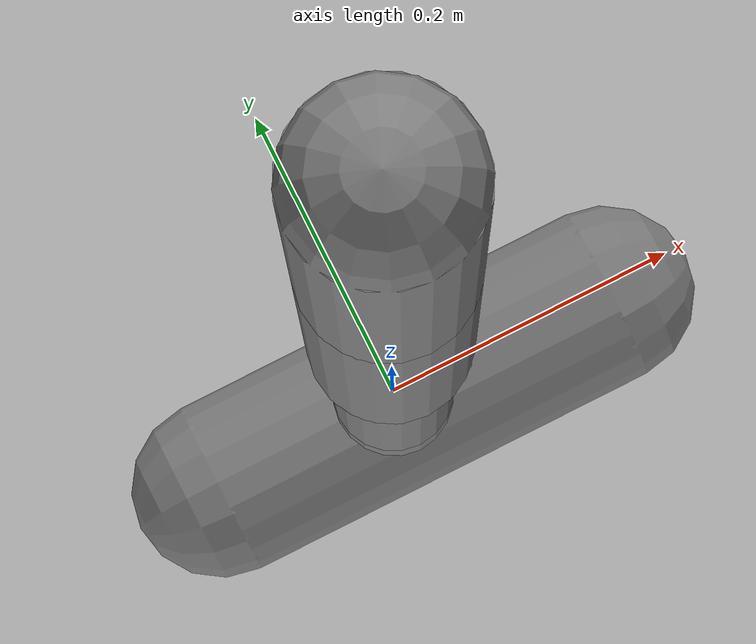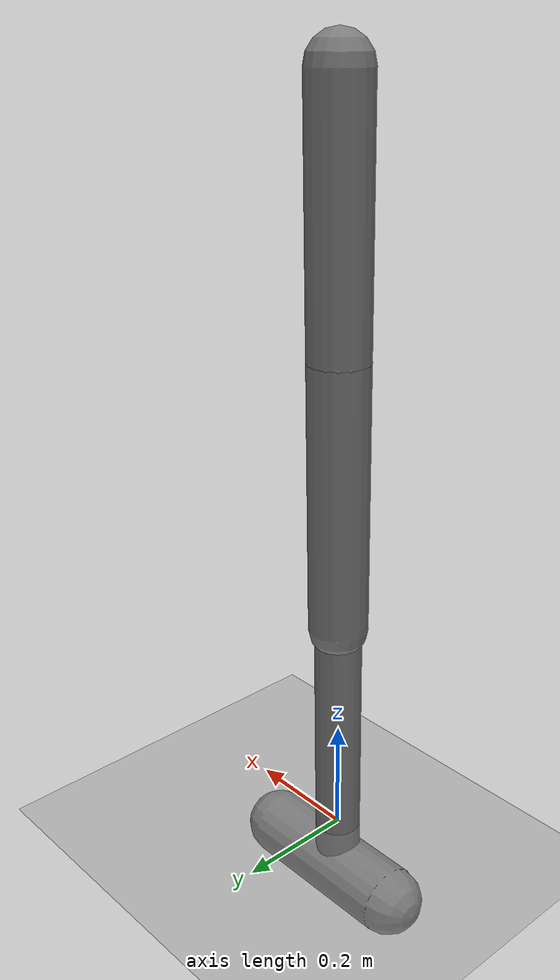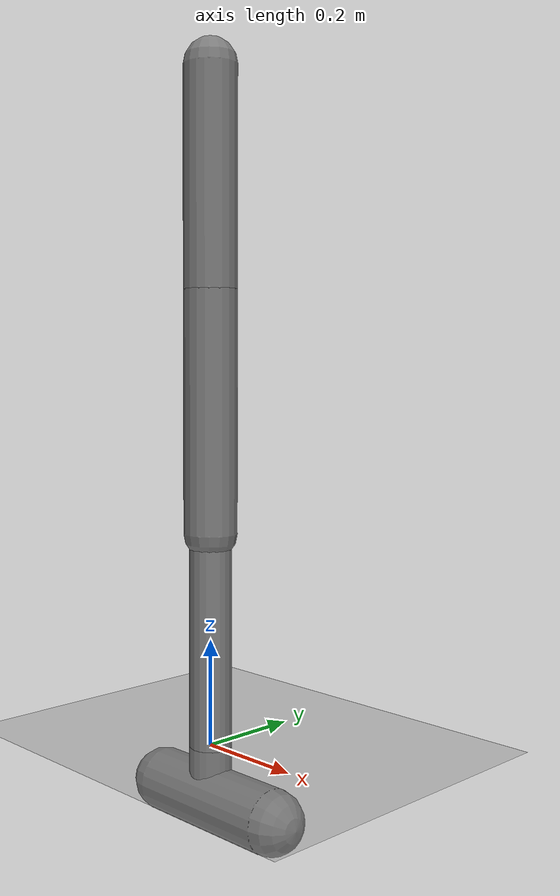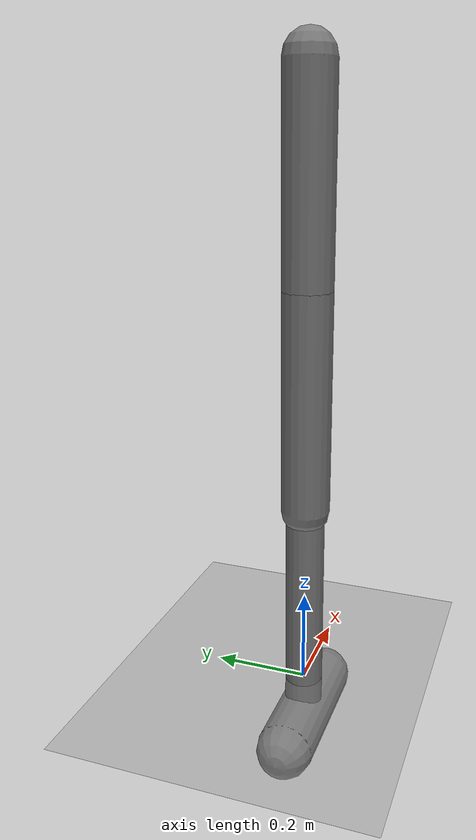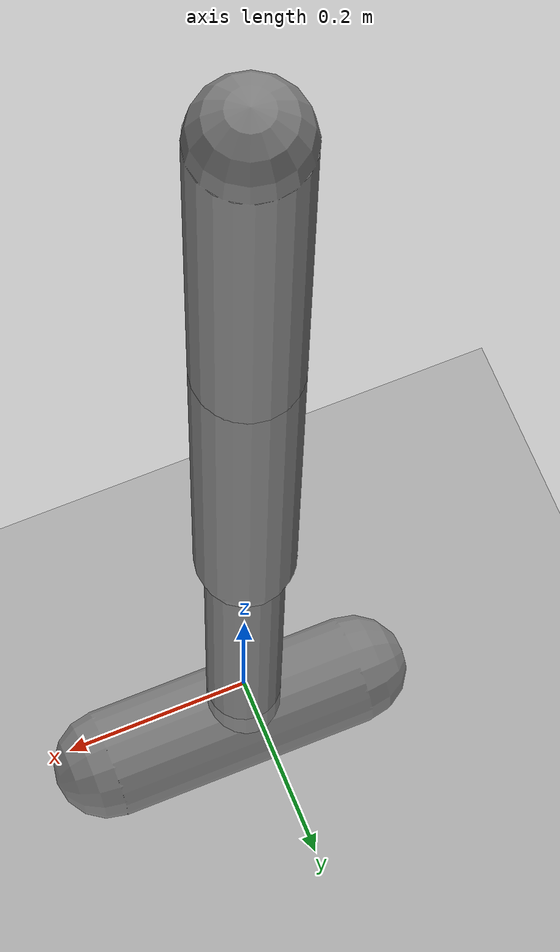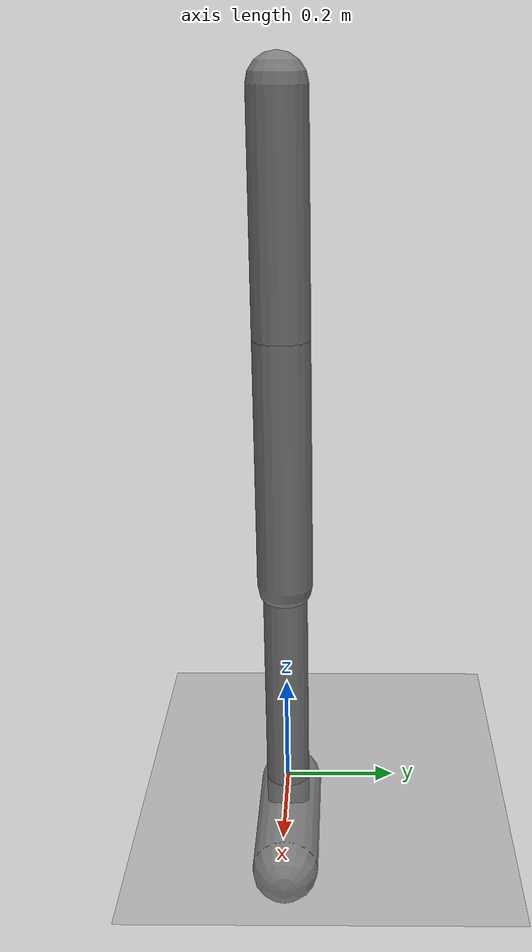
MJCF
<mujoco model="hopper">
  <compiler autolimits="true"/>
  <option integrator="Euler" timestep="0.005"/>
  <worldbody>
    <light pos="0 0 3"/>
    <geom type="plane" size="5 5 0.1" contype="1" conaffinity="1"/>
    <body name="torso" pos="0 0 1.25">
      <joint name="rootx" type="slide" axis="1 0 0"/>
      <joint name="rootz" type="slide" axis="0 0 1"/>
      <joint name="rooty" type="hinge" axis="0 1 0"/>
      <geom type="capsule" fromto="0 0 0 0 0 -0.4" size="0.05" mass="3"
             friction="1 0.005 0.0001" condim="3"/>
      <body name="thigh" pos="0 0 -0.4">
        <joint name="thigh_joint" type="hinge" axis="0 1 0" damping="5"/>
        <geom type="capsule" fromto="0 0 0 0 0 -0.45" size="0.05" mass="3"
               friction="1 0.005 0.0001" condim="3"/>
        <body name="leg" pos="0 0 -0.45">
          <joint name="leg_joint" type="hinge" axis="0 1 0" damping="5"/>
          <geom type="capsule" fromto="0 0 0 0 0 -0.5" size="0.04" mass="3"
                 friction="1 0.005 0.0001" condim="3"/>
          <body name="foot" pos="0 0 -0.5">
            <joint name="foot_joint" type="hinge" axis="0 1 0" damping="5"/>
            <geom type="capsule" fromto="-0.13 0 0 0.16 0 0" size="0.06" mass="2"
                   friction="2 0.005 0.0001" condim="3"/>
          </body>
        </body>
      </body>
    </body>
  </worldbody>
  <actuator>
    <motor joint="thigh_joint" gear="200"/>
    <motor joint="leg_joint" gear="200"/>
    <motor joint="foot_joint" gear="200"/>
  </actuator>
</mujoco>
